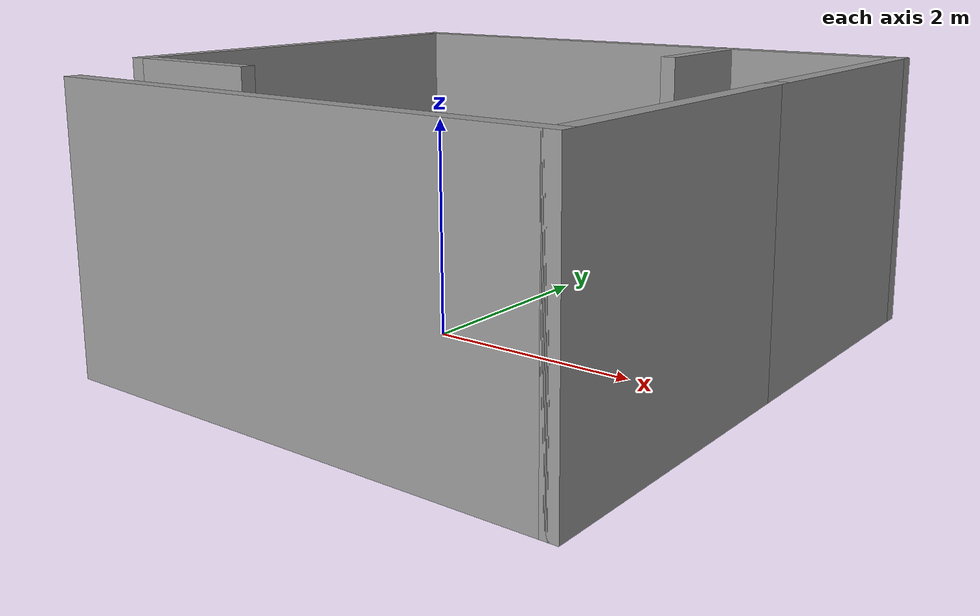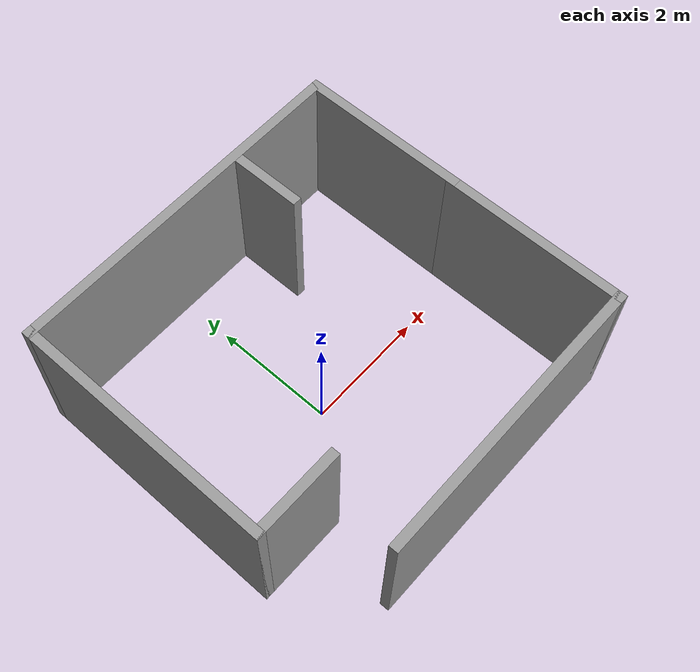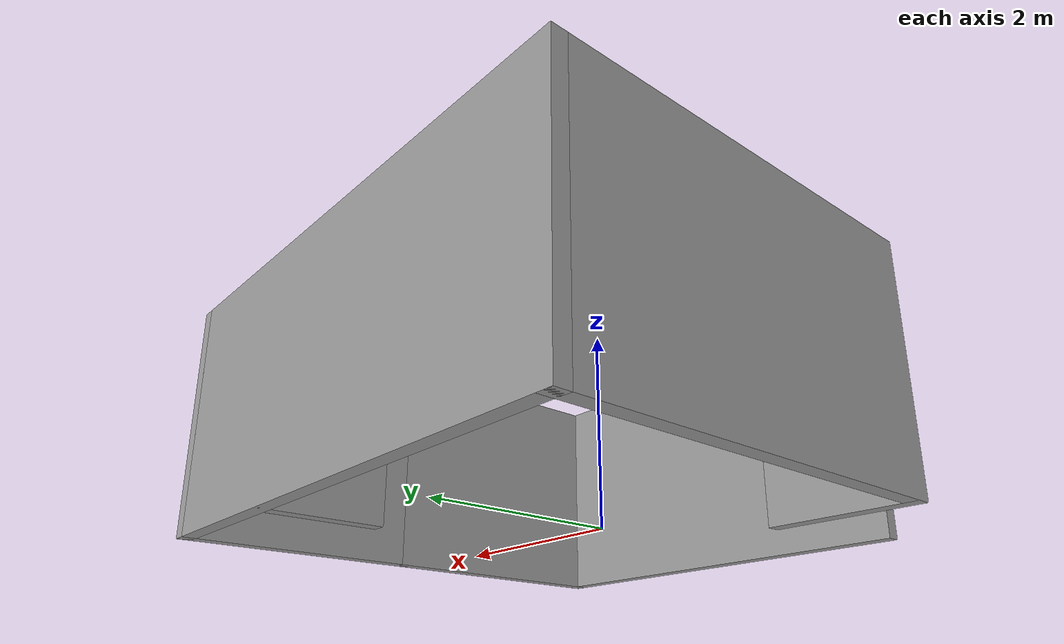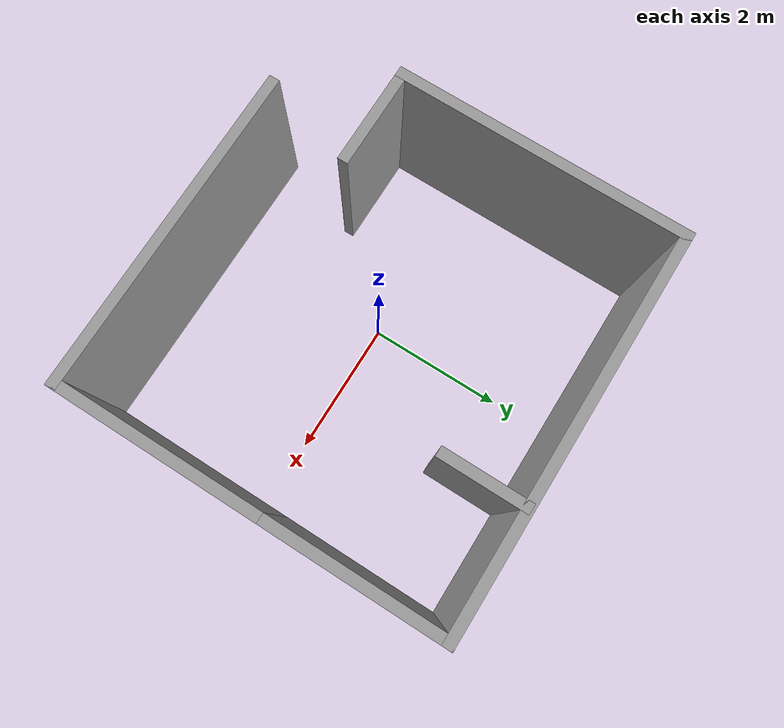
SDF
<?xml version='1.0'?>
<sdf version='1.6'>
  <model name='Untitled'>
    <pose frame=''>0.28 0.145 0 0 -0 0</pose>
    <link name='Wall_0'>
      <collision name='Wall_0_Collision'>
        <geometry>
          <box>
            <size>4.75 0.15 2.5</size>
          </box>
        </geometry>
        <pose frame=''>0 0 1.25 0 -0 0</pose>
      </collision>
      <visual name='Wall_0_Visual'>
        <pose frame=''>0 0 1.25 0 -0 0</pose>
        <geometry>
          <box>
            <size>4.75 0.15 2.5</size>
          </box>
        </geometry>
        <material>
          <script>
            <uri>file://media/materials/scripts/gazebo.material</uri>
            <name>Gazebo/Grey</name>
          </script>
          <ambient>1 1 1 1</ambient>
        </material>
        <meta>
          <layer>0</layer>
        </meta>
      </visual>
      <pose frame=''>0.5 -2.725 0 0 -0 0</pose>
    </link>
    <link name='Wall_1'>
      <collision name='Wall_1_Collision'>
        <geometry>
          <box>
            <size>3 0.15 2.5</size>
          </box>
        </geometry>
        <pose frame=''>0 0 1.25 0 -0 0</pose>
      </collision>
      <visual name='Wall_1_Visual'>
        <pose frame=''>0 0 1.25 0 -0 0</pose>
        <geometry>
          <box>
            <size>3 0.15 2.5</size>
          </box>
        </geometry>
        <material>
          <script>
            <uri>file://media/materials/scripts/gazebo.material</uri>
            <name>Gazebo/Grey</name>
          </script>
          <ambient>1 1 1 1</ambient>
        </material>
        <meta>
          <layer>0</layer>
        </meta>
      </visual>
      <pose frame=''>2.8 -1.3 0 0 -0 1.5708</pose>
    </link>
    <link name='Wall_2'>
      <collision name='Wall_2_Collision'>
        <geometry>
          <box>
            <size>2.75 0.15 2.5</size>
          </box>
        </geometry>
        <pose frame=''>0 0 1.25 0 -0 0</pose>
      </collision>
      <visual name='Wall_2_Visual'>
        <pose frame=''>0 0 1.25 0 -0 0</pose>
        <geometry>
          <box>
            <size>2.75 0.15 2.5</size>
          </box>
        </geometry>
        <material>
          <script>
            <uri>file://media/materials/scripts/gazebo.material</uri>
            <name>Gazebo/Grey</name>
          </script>
          <ambient>1 1 1 1</ambient>
        </material>
        <meta>
          <layer>0</layer>
        </meta>
      </visual>
      <pose frame=''>2.8 1.425 0 0 -0 1.5708</pose>
    </link>
    <link name='Wall_3'>
      <collision name='Wall_3_Collision'>
        <geometry>
          <box>
            <size>5.75 0.15 2.5</size>
          </box>
        </geometry>
        <pose frame=''>0 0 1.25 0 -0 0</pose>
      </collision>
      <visual name='Wall_3_Visual'>
        <pose frame=''>0 0 1.25 0 -0 0</pose>
        <geometry>
          <box>
            <size>5.75 0.15 2.5</size>
          </box>
        </geometry>
        <material>
          <script>
            <uri>file://media/materials/scripts/gazebo.material</uri>
            <name>Gazebo/Grey</name>
          </script>
          <ambient>1 1 1 1</ambient>
        </material>
        <meta>
          <layer>0</layer>
        </meta>
      </visual>
      <pose frame=''>0 2.725 0 0 -0 3.14159</pose>
    </link>
    <link name='Wall_4'>
      <collision name='Wall_4_Collision'>
        <geometry>
          <box>
            <size>4.25 0.15 2.5</size>
          </box>
        </geometry>
        <pose frame=''>0 0 1.25 0 -0 0</pose>
      </collision>
      <visual name='Wall_4_Visual'>
        <pose frame=''>0 0 1.25 0 -0 0</pose>
        <geometry>
          <box>
            <size>4.25 0.15 2.5</size>
          </box>
        </geometry>
        <material>
          <script>
            <uri>file://media/materials/scripts/gazebo.material</uri>
            <name>Gazebo/Grey</name>
          </script>
          <ambient>1 1 1 1</ambient>
        </material>
        <meta>
          <layer>0</layer>
        </meta>
      </visual>
      <pose frame=''>-2.8 0.675 0 0 -0 -1.5708</pose>
    </link>
    <link name='Wall_5'>
      <collision name='Wall_5_Collision'>
        <geometry>
          <box>
            <size>1.5 0.15 2.5</size>
          </box>
        </geometry>
        <pose frame=''>0 0 1.25 0 -0 0</pose>
      </collision>
      <visual name='Wall_5_Visual'>
        <pose frame=''>0 0 1.25 0 -0 0</pose>
        <geometry>
          <box>
            <size>1.5 0.15 2.5</size>
          </box>
        </geometry>
        <material>
          <script>
            <uri>file://media/materials/scripts/gazebo.material</uri>
            <name>Gazebo/Grey</name>
          </script>
          <ambient>1 1 1 1</ambient>
        </material>
        <meta>
          <layer>0</layer>
        </meta>
      </visual>
      <pose frame=''>-2.125 -1.375 0 0 -0 0</pose>
    </link>
    <link name='Wall_7'>
      <collision name='Wall_7_Collision'>
        <geometry>
          <box>
            <size>1.25 0.15 2.5</size>
          </box>
        </geometry>
        <pose frame=''>0 0 1.25 0 -0 0</pose>
      </collision>
      <visual name='Wall_7_Visual'>
        <pose frame=''>0 0 1.25 0 -0 0</pose>
        <geometry>
          <box>
            <size>1.25 0.15 2.5</size>
          </box>
        </geometry>
        <material>
          <script>
            <uri>file://media/materials/scripts/gazebo.material</uri>
            <name>Gazebo/Grey</name>
          </script>
          <ambient>1 1 1 1</ambient>
        </material>
        <meta>
          <layer>0</layer>
        </meta>
      </visual>
      <pose frame=''>1.06934 2.14013 0 0 -0 -1.5708</pose>
    </link>
    <static>1</static>
  </model>
</sdf>
